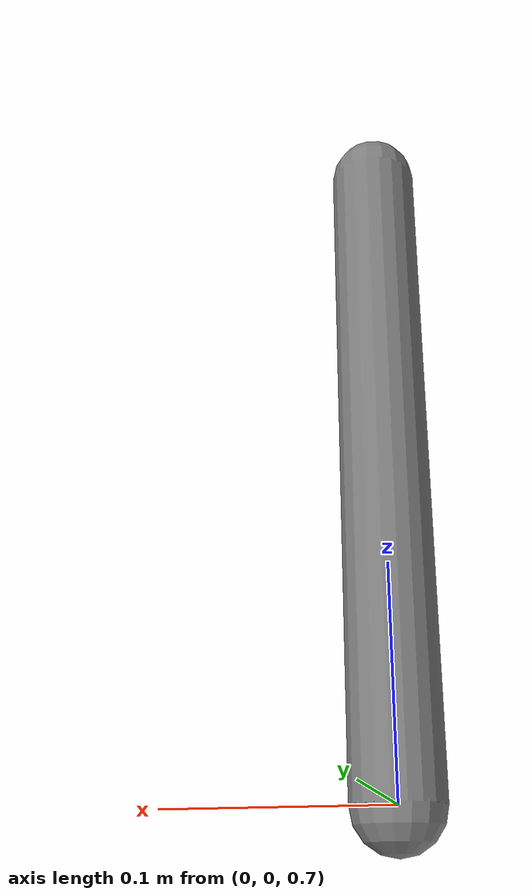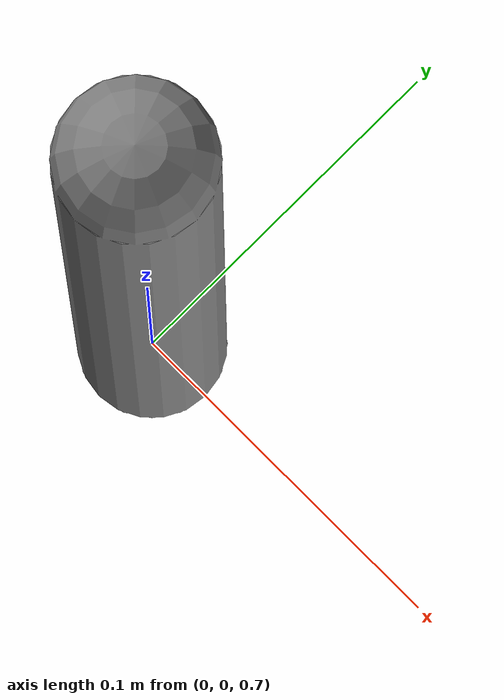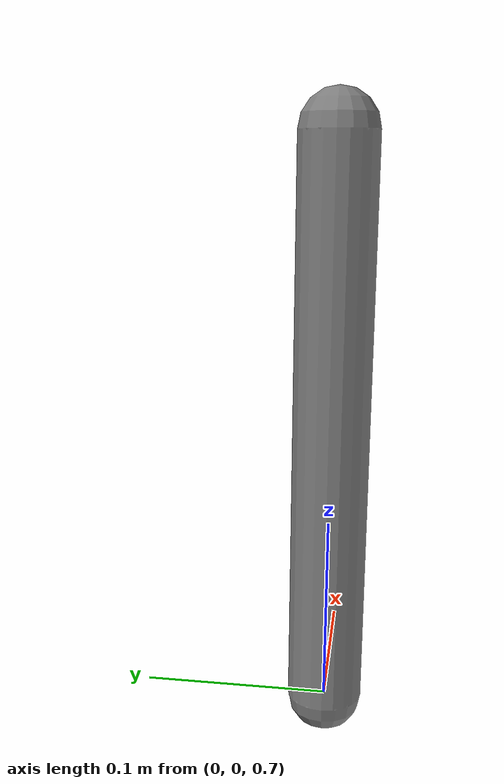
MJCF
<mujoco model="cocontraction">
  <compiler angle="radian"/>
  <option gravity="0 0 0" timestep="0.001" integrator="RK4"/>

  <worldbody>
    <body name="upper_arm" pos="0 0 1">
      <body name="forearm" pos="0 0 0">
        <joint name="elbow" type="hinge" axis="0 1 0"
               range="-1.57 1.57" limited="true" damping="0.5"/>
        <inertial pos="0 0 -0.15" mass="1.0"
                  diaginertia="0.015 0.015 0.001"/>
        <geom type="capsule" size="0.02" fromto="0 0 0 0 0 -0.3"
              contype="0" conaffinity="0"/>
      </body>
    </body>
  </worldbody>

  <actuator>
    <muscle name="agonist" joint="elbow" gear="1" force="50"
            range="0.75 1.05" lmin="0.5" lmax="1.6"
            vmax="1.0" fpmax="0.3" fvmax="1.4"
            timeconst="0.01 0.04"/>
    <muscle name="antagonist" joint="elbow" gear="-1" force="50"
            range="0.75 1.05" lmin="0.5" lmax="1.6"
            vmax="1.0" fpmax="0.3" fvmax="1.4"
            timeconst="0.01 0.04"/>
  </actuator>
</mujoco>
